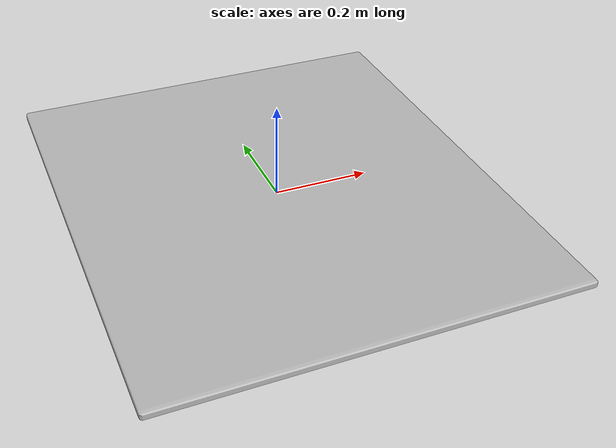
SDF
<?xml version='1.0'?>
<sdf version='1.4'>
  <model name='153'>
    <pose>0 0 0 0 0 0</pose>
    <static>true</static>
    <link name='link'>
      <collision name='collision'>
        <pose>0 0 0 0 0 0</pose>
        <geometry>
          <box>
            <size>0.86 1 0</size>
          </box>
        </geometry>
      </collision>
      <visual name='visual'>
        <pose>0 0 0 0 0 0</pose>
        <geometry>
          <mesh><uri>model://153/153.dae</uri></mesh>
        </geometry>
      </visual>
    </link>
  </model>
</sdf>
